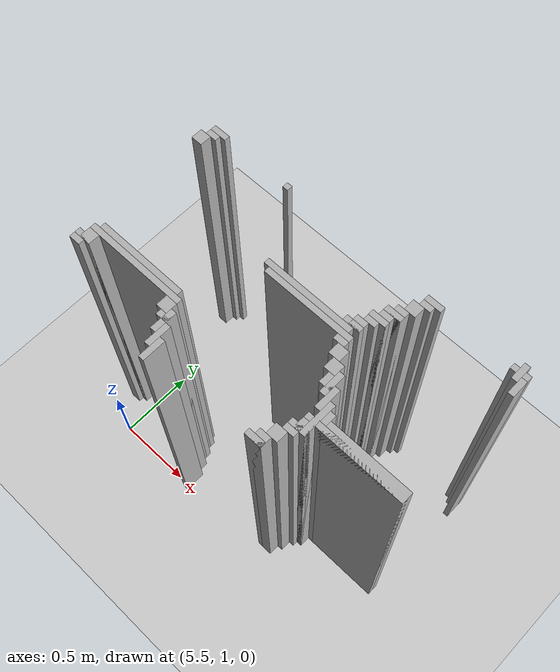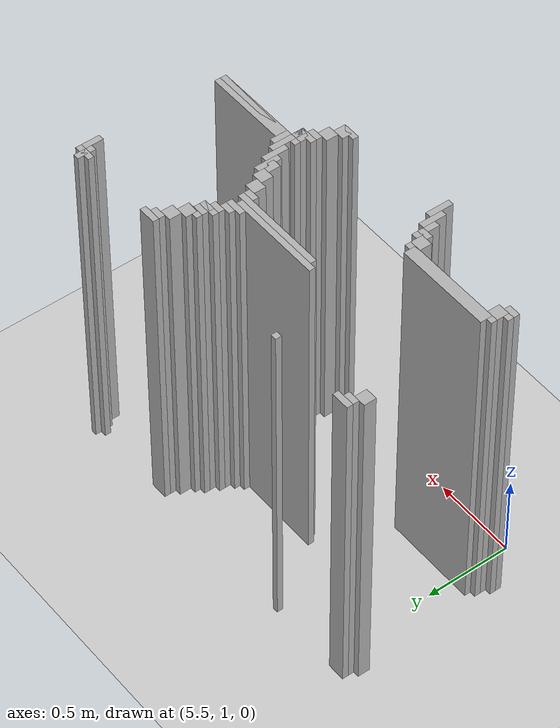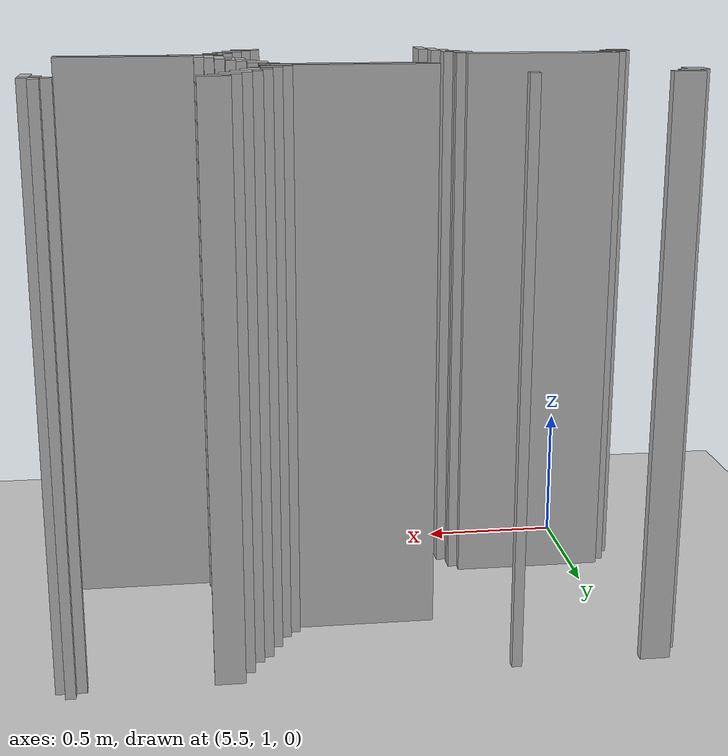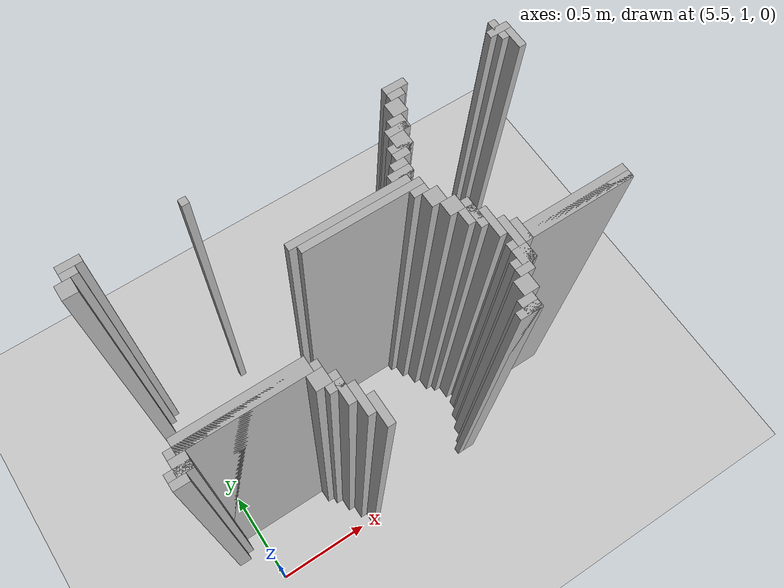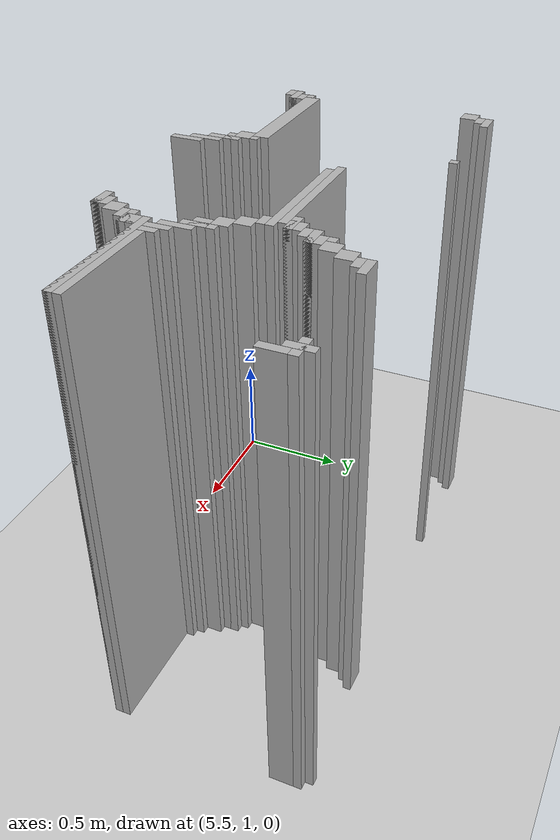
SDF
<sdf version="1.6">
 <world name="slam_world">
  <model name="ground_plane">
   <static>true</static>
   <link name="link">
    <collision name="collision">
     <geometry><plane><normal>0 0 1</normal><size>100 100</size></plane></geometry>
    </collision>
    <visual name="visual">
     <geometry><plane><normal>0 0 1</normal><size>100 100</size></plane></geometry>
     <material>
      <ambient>0.8 0.8 0.8 1</ambient>
      <diffuse>0.8 0.8 0.8 1</diffuse>
      <specular>0.8 0.8 0.8 1</specular>
     </material>
    </visual>
   </link>
  </model>
  <model name="wall_5050">
   <static>true</static>
   <pose>7.395591647331786 2.140371229698376 1.0 0 0 0</pose>
   <link name="link">
    <collision name="collision">
     <geometry><box><size>0.03480278422273782 0.10440835266821345 2.0</size></box></geometry>
    </collision>
    <visual name="visual">
     <geometry><box><size>0.03480278422273782 0.10440835266821345 2.0</size></box></geometry>
     <material><ambient>0.5 0.5 0.5 1</ambient><diffuse>0.7 0.7 0.7 1</diffuse></material>
    </visual>
   </link>
  </model>
  <model name="wall_5061">
   <static>true</static>
   <pose>5.41183294663573 2.140371229698376 1.0 0 0 0</pose>
   <link name="link">
    <collision name="collision">
     <geometry><box><size>0.10440835266821345 0.03480278422273782 2.0</size></box></geometry>
    </collision>
    <visual name="visual">
     <geometry><box><size>0.10440835266821345 0.03480278422273782 2.0</size></box></geometry>
     <material><ambient>0.5 0.5 0.5 1</ambient><diffuse>0.7 0.7 0.7 1</diffuse></material>
    </visual>
   </link>
  </model>
  <model name="wall_5062">
   <static>true</static>
   <pose>5.89907192575406 2.140371229698376 1.0 0 0 0</pose>
   <link name="link">
    <collision name="collision">
     <geometry><box><size>0.03480278422273782 0.03480278422273782 2.0</size></box></geometry>
    </collision>
    <visual name="visual">
     <geometry><box><size>0.03480278422273782 0.03480278422273782 2.0</size></box></geometry>
     <material><ambient>0.5 0.5 0.5 1</ambient><diffuse>0.7 0.7 0.7 1</diffuse></material>
    </visual>
   </link>
  </model>
  <model name="wall_5063">
   <static>true</static>
   <pose>6.8735498839907185 2.140371229698376 1.0 0 0 0</pose>
   <link name="link">
    <collision name="collision">
     <geometry><box><size>0.10440835266821345 0.03480278422273782 2.0</size></box></geometry>
    </collision>
    <visual name="visual">
     <geometry><box><size>0.10440835266821345 0.03480278422273782 2.0</size></box></geometry>
     <material><ambient>0.5 0.5 0.5 1</ambient><diffuse>0.7 0.7 0.7 1</diffuse></material>
    </visual>
   </link>
  </model>
  <model name="wall_5064">
   <static>true</static>
   <pose>7.395591647331786 2.140371229698376 1.0 0 0 0</pose>
   <link name="link">
    <collision name="collision">
     <geometry><box><size>0.10440835266821345 0.03480278422273782 2.0</size></box></geometry>
    </collision>
    <visual name="visual">
     <geometry><box><size>0.10440835266821345 0.03480278422273782 2.0</size></box></geometry>
     <material><ambient>0.5 0.5 0.5 1</ambient><diffuse>0.7 0.7 0.7 1</diffuse></material>
    </visual>
   </link>
  </model>
  <model name="wall_5078">
   <static>true</static>
   <pose>5.3944315545243615 2.105568445475638 1.0 0 0 0</pose>
   <link name="link">
    <collision name="collision">
     <geometry><box><size>0.06960556844547564 0.03480278422273782 2.0</size></box></geometry>
    </collision>
    <visual name="visual">
     <geometry><box><size>0.06960556844547564 0.03480278422273782 2.0</size></box></geometry>
     <material><ambient>0.5 0.5 0.5 1</ambient><diffuse>0.7 0.7 0.7 1</diffuse></material>
    </visual>
   </link>
  </model>
  <model name="wall_5079">
   <static>true</static>
   <pose>6.85614849187935 2.105568445475638 1.0 0 0 0</pose>
   <link name="link">
    <collision name="collision">
     <geometry><box><size>0.06960556844547564 0.03480278422273782 2.0</size></box></geometry>
    </collision>
    <visual name="visual">
     <geometry><box><size>0.06960556844547564 0.03480278422273782 2.0</size></box></geometry>
     <material><ambient>0.5 0.5 0.5 1</ambient><diffuse>0.7 0.7 0.7 1</diffuse></material>
    </visual>
   </link>
  </model>
  <model name="wall_5080">
   <static>true</static>
   <pose>7.430394431554524 2.0707656612529 1.0 0 0 0</pose>
   <link name="link">
    <collision name="collision">
     <geometry><box><size>0.03480278422273782 0.10440835266821345 2.0</size></box></geometry>
    </collision>
    <visual name="visual">
     <geometry><box><size>0.03480278422273782 0.10440835266821345 2.0</size></box></geometry>
     <material><ambient>0.5 0.5 0.5 1</ambient><diffuse>0.7 0.7 0.7 1</diffuse></material>
    </visual>
   </link>
  </model>
  <model name="wall_5092">
   <static>true</static>
   <pose>5.359628770301624 2.053364269141531 1.0 0 0 0</pose>
   <link name="link">
    <collision name="collision">
     <geometry><box><size>0.06960556844547564 0.06960556844547564 2.0</size></box></geometry>
    </collision>
    <visual name="visual">
     <geometry><box><size>0.06960556844547564 0.06960556844547564 2.0</size></box></geometry>
     <material><ambient>0.5 0.5 0.5 1</ambient><diffuse>0.7 0.7 0.7 1</diffuse></material>
    </visual>
   </link>
  </model>
  <model name="wall_5093">
   <static>true</static>
   <pose>6.821345707656612 2.053364269141531 1.0 0 0 0</pose>
   <link name="link">
    <collision name="collision">
     <geometry><box><size>0.06960556844547564 0.06960556844547564 2.0</size></box></geometry>
    </collision>
    <visual name="visual">
     <geometry><box><size>0.06960556844547564 0.06960556844547564 2.0</size></box></geometry>
     <material><ambient>0.5 0.5 0.5 1</ambient><diffuse>0.7 0.7 0.7 1</diffuse></material>
    </visual>
   </link>
  </model>
  <model name="wall_5107">
   <static>true</static>
   <pose>6.786542923433874 1.9837587006960555 1.0 0 0 0</pose>
   <link name="link">
    <collision name="collision">
     <geometry><box><size>0.06960556844547564 0.06960556844547564 2.0</size></box></geometry>
    </collision>
    <visual name="visual">
     <geometry><box><size>0.06960556844547564 0.06960556844547564 2.0</size></box></geometry>
     <material><ambient>0.5 0.5 0.5 1</ambient><diffuse>0.7 0.7 0.7 1</diffuse></material>
    </visual>
   </link>
  </model>
  <model name="wall_5121">
   <static>true</static>
   <pose>6.769141531322505 1.9663573085846866 1.0 0 0 0</pose>
   <link name="link">
    <collision name="collision">
     <geometry><box><size>0.10440835266821345 0.03480278422273782 2.0</size></box></geometry>
    </collision>
    <visual name="visual">
     <geometry><box><size>0.10440835266821345 0.03480278422273782 2.0</size></box></geometry>
     <material><ambient>0.5 0.5 0.5 1</ambient><diffuse>0.7 0.7 0.7 1</diffuse></material>
    </visual>
   </link>
  </model>
  <model name="wall_5132">
   <static>true</static>
   <pose>6.751740139211137 1.91415313225058 1.0 0 0 0</pose>
   <link name="link">
    <collision name="collision">
     <geometry><box><size>0.06960556844547564 0.06960556844547564 2.0</size></box></geometry>
    </collision>
    <visual name="visual">
     <geometry><box><size>0.06960556844547564 0.06960556844547564 2.0</size></box></geometry>
     <material><ambient>0.5 0.5 0.5 1</ambient><diffuse>0.7 0.7 0.7 1</diffuse></material>
    </visual>
   </link>
  </model>
  <model name="wall_5143">
   <static>true</static>
   <pose>6.734338747099768 1.896751740139211 1.0 0 0 0</pose>
   <link name="link">
    <collision name="collision">
     <geometry><box><size>0.10440835266821345 0.03480278422273782 2.0</size></box></geometry>
    </collision>
    <visual name="visual">
     <geometry><box><size>0.10440835266821345 0.03480278422273782 2.0</size></box></geometry>
     <material><ambient>0.5 0.5 0.5 1</ambient><diffuse>0.7 0.7 0.7 1</diffuse></material>
    </visual>
   </link>
  </model>
  <model name="wall_5154">
   <static>true</static>
   <pose>6.716937354988398 1.8619489559164732 1.0 0 0 0</pose>
   <link name="link">
    <collision name="collision">
     <geometry><box><size>0.06960556844547564 0.03480278422273782 2.0</size></box></geometry>
    </collision>
    <visual name="visual">
     <geometry><box><size>0.06960556844547564 0.03480278422273782 2.0</size></box></geometry>
     <material><ambient>0.5 0.5 0.5 1</ambient><diffuse>0.7 0.7 0.7 1</diffuse></material>
    </visual>
   </link>
  </model>
  <model name="wall_5162">
   <static>true</static>
   <pose>6.682134570765661 1.8097447795823665 1.0 0 0 0</pose>
   <link name="link">
    <collision name="collision">
     <geometry><box><size>0.06960556844547564 0.06960556844547564 2.0</size></box></geometry>
    </collision>
    <visual name="visual">
     <geometry><box><size>0.06960556844547564 0.06960556844547564 2.0</size></box></geometry>
     <material><ambient>0.5 0.5 0.5 1</ambient><diffuse>0.7 0.7 0.7 1</diffuse></material>
    </visual>
   </link>
  </model>
  <model name="wall_5176">
   <static>true</static>
   <pose>6.664733178654292 1.7923433874709975 1.0 0 0 0</pose>
   <link name="link">
    <collision name="collision">
     <geometry><box><size>0.10440835266821345 0.03480278422273782 2.0</size></box></geometry>
    </collision>
    <visual name="visual">
     <geometry><box><size>0.10440835266821345 0.03480278422273782 2.0</size></box></geometry>
     <material><ambient>0.5 0.5 0.5 1</ambient><diffuse>0.7 0.7 0.7 1</diffuse></material>
    </visual>
   </link>
  </model>
  <model name="wall_5188">
   <static>true</static>
   <pose>6.403712296983758 1.75754060324826 1.0 0 0 0</pose>
   <link name="link">
    <collision name="collision">
     <geometry><box><size>0.5568445475638051 0.03480278422273782 2.0</size></box></geometry>
    </collision>
    <visual name="visual">
     <geometry><box><size>0.5568445475638051 0.03480278422273782 2.0</size></box></geometry>
     <material><ambient>0.5 0.5 0.5 1</ambient><diffuse>0.7 0.7 0.7 1</diffuse></material>
    </visual>
   </link>
  </model>
  <model name="wall_5198">
   <static>true</static>
   <pose>6.438515081206496 1.722737819025522 1.0 0 0 0</pose>
   <link name="link">
    <collision name="collision">
     <geometry><box><size>0.5568445475638051 0.03480278422273782 2.0</size></box></geometry>
    </collision>
    <visual name="visual">
     <geometry><box><size>0.5568445475638051 0.03480278422273782 2.0</size></box></geometry>
     <material><ambient>0.5 0.5 0.5 1</ambient><diffuse>0.7 0.7 0.7 1</diffuse></material>
    </visual>
   </link>
  </model>
  <model name="wall_5213">
   <static>true</static>
   <pose>6.682134570765661 1.6879350348027842 1.0 0 0 0</pose>
   <link name="link">
    <collision name="collision">
     <geometry><box><size>0.06960556844547564 0.03480278422273782 2.0</size></box></geometry>
    </collision>
    <visual name="visual">
     <geometry><box><size>0.06960556844547564 0.03480278422273782 2.0</size></box></geometry>
     <material><ambient>0.5 0.5 0.5 1</ambient><diffuse>0.7 0.7 0.7 1</diffuse></material>
    </visual>
   </link>
  </model>
  <model name="wall_5228">
   <static>true</static>
   <pose>6.716937354988398 1.6357308584686774 1.0 0 0 0</pose>
   <link name="link">
    <collision name="collision">
     <geometry><box><size>0.06960556844547564 0.06960556844547564 2.0</size></box></geometry>
    </collision>
    <visual name="visual">
     <geometry><box><size>0.06960556844547564 0.06960556844547564 2.0</size></box></geometry>
     <material><ambient>0.5 0.5 0.5 1</ambient><diffuse>0.7 0.7 0.7 1</diffuse></material>
    </visual>
   </link>
  </model>
  <model name="wall_5243">
   <static>true</static>
   <pose>6.751740139211137 1.5661252900232019 1.0 0 0 0</pose>
   <link name="link">
    <collision name="collision">
     <geometry><box><size>0.06960556844547564 0.06960556844547564 2.0</size></box></geometry>
    </collision>
    <visual name="visual">
     <geometry><box><size>0.06960556844547564 0.06960556844547564 2.0</size></box></geometry>
     <material><ambient>0.5 0.5 0.5 1</ambient><diffuse>0.7 0.7 0.7 1</diffuse></material>
    </visual>
   </link>
  </model>
  <model name="wall_5258">
   <static>true</static>
   <pose>6.803944315545244 1.4965197215777262 1.0 0 0 0</pose>
   <link name="link">
    <collision name="collision">
     <geometry><box><size>0.03480278422273782 0.13921113689095127 2.0</size></box></geometry>
    </collision>
    <visual name="visual">
     <geometry><box><size>0.03480278422273782 0.13921113689095127 2.0</size></box></geometry>
     <material><ambient>0.5 0.5 0.5 1</ambient><diffuse>0.7 0.7 0.7 1</diffuse></material>
    </visual>
   </link>
  </model>
  <model name="wall_5273">
   <static>true</static>
   <pose>6.786542923433874 1.4965197215777262 1.0 0 0 0</pose>
   <link name="link">
    <collision name="collision">
     <geometry><box><size>0.06960556844547564 0.06960556844547564 2.0</size></box></geometry>
    </collision>
    <visual name="visual">
     <geometry><box><size>0.06960556844547564 0.06960556844547564 2.0</size></box></geometry>
     <material><ambient>0.5 0.5 0.5 1</ambient><diffuse>0.7 0.7 0.7 1</diffuse></material>
    </visual>
   </link>
  </model>
  <model name="wall_5284">
   <static>true</static>
   <pose>6.838747099767981 1.4269141531322505 1.0 0 0 0</pose>
   <link name="link">
    <collision name="collision">
     <geometry><box><size>0.03480278422273782 0.13921113689095127 2.0</size></box></geometry>
    </collision>
    <visual name="visual">
     <geometry><box><size>0.03480278422273782 0.13921113689095127 2.0</size></box></geometry>
     <material><ambient>0.5 0.5 0.5 1</ambient><diffuse>0.7 0.7 0.7 1</diffuse></material>
    </visual>
   </link>
  </model>
  <model name="wall_5306">
   <static>true</static>
   <pose>6.8735498839907185 1.322505800464037 1.0 0 0 0</pose>
   <link name="link">
    <collision name="collision">
     <geometry><box><size>0.03480278422273782 0.2088167053364269 2.0</size></box></geometry>
    </collision>
    <visual name="visual">
     <geometry><box><size>0.03480278422273782 0.2088167053364269 2.0</size></box></geometry>
     <material><ambient>0.5 0.5 0.5 1</ambient><diffuse>0.7 0.7 0.7 1</diffuse></material>
    </visual>
   </link>
  </model>
  <model name="wall_5316">
   <static>true</static>
   <pose>6.908352668213457 1.339907192575406 1.0 0 0 0</pose>
   <link name="link">
    <collision name="collision">
     <geometry><box><size>0.03480278422273782 0.10440835266821345 2.0</size></box></geometry>
    </collision>
    <visual name="visual">
     <geometry><box><size>0.03480278422273782 0.10440835266821345 2.0</size></box></geometry>
     <material><ambient>0.5 0.5 0.5 1</ambient><diffuse>0.7 0.7 0.7 1</diffuse></material>
    </visual>
   </link>
  </model>
  <model name="wall_5330">
   <static>true</static>
   <pose>5.672853828306264 1.322505800464037 1.0 0 0 0</pose>
   <link name="link">
    <collision name="collision">
     <geometry><box><size>0.5568445475638051 0.06960556844547564 2.0</size></box></geometry>
    </collision>
    <visual name="visual">
     <geometry><box><size>0.5568445475638051 0.06960556844547564 2.0</size></box></geometry>
     <material><ambient>0.5 0.5 0.5 1</ambient><diffuse>0.7 0.7 0.7 1</diffuse></material>
    </visual>
   </link>
  </model>
  <model name="wall_5331">
   <static>true</static>
   <pose>7.16937354988399 1.322505800464037 1.0 0 0 0</pose>
   <link name="link">
    <collision name="collision">
     <geometry><box><size>0.4872389791183295 0.06960556844547564 2.0</size></box></geometry>
    </collision>
    <visual name="visual">
     <geometry><box><size>0.4872389791183295 0.06960556844547564 2.0</size></box></geometry>
     <material><ambient>0.5 0.5 0.5 1</ambient><diffuse>0.7 0.7 0.7 1</diffuse></material>
    </visual>
   </link>
  </model>
  <model name="wall_5338">
   <static>true</static>
   <pose>5.672853828306264 1.3051044083526682 1.0 0 0 0</pose>
   <link name="link">
    <collision name="collision">
     <geometry><box><size>0.6264501160092807 0.03480278422273782 2.0</size></box></geometry>
    </collision>
    <visual name="visual">
     <geometry><box><size>0.6264501160092807 0.03480278422273782 2.0</size></box></geometry>
     <material><ambient>0.5 0.5 0.5 1</ambient><diffuse>0.7 0.7 0.7 1</diffuse></material>
    </visual>
   </link>
  </model>
  <model name="wall_5339">
   <static>true</static>
   <pose>7.117169373549884 1.3051044083526682 1.0 0 0 0</pose>
   <link name="link">
    <collision name="collision">
     <geometry><box><size>0.5916473317865429 0.03480278422273782 2.0</size></box></geometry>
    </collision>
    <visual name="visual">
     <geometry><box><size>0.5916473317865429 0.03480278422273782 2.0</size></box></geometry>
     <material><ambient>0.5 0.5 0.5 1</ambient><diffuse>0.7 0.7 0.7 1</diffuse></material>
    </visual>
   </link>
  </model>
  <model name="wall_5346">
   <static>true</static>
   <pose>5.3944315545243615 1.2529002320185614 1.0 0 0 0</pose>
   <link name="link">
    <collision name="collision">
     <geometry><box><size>0.06960556844547564 0.06960556844547564 2.0</size></box></geometry>
    </collision>
    <visual name="visual">
     <geometry><box><size>0.06960556844547564 0.06960556844547564 2.0</size></box></geometry>
     <material><ambient>0.5 0.5 0.5 1</ambient><diffuse>0.7 0.7 0.7 1</diffuse></material>
    </visual>
   </link>
  </model>
  <model name="wall_5347">
   <static>true</static>
   <pose>5.951276102088166 1.2529002320185614 1.0 0 0 0</pose>
   <link name="link">
    <collision name="collision">
     <geometry><box><size>0.06960556844547564 0.06960556844547564 2.0</size></box></geometry>
    </collision>
    <visual name="visual">
     <geometry><box><size>0.06960556844547564 0.06960556844547564 2.0</size></box></geometry>
     <material><ambient>0.5 0.5 0.5 1</ambient><diffuse>0.7 0.7 0.7 1</diffuse></material>
    </visual>
   </link>
  </model>
  <model name="wall_5348">
   <static>true</static>
   <pose>6.85614849187935 1.2529002320185614 1.0 0 0 0</pose>
   <link name="link">
    <collision name="collision">
     <geometry><box><size>0.06960556844547564 0.06960556844547564 2.0</size></box></geometry>
    </collision>
    <visual name="visual">
     <geometry><box><size>0.06960556844547564 0.06960556844547564 2.0</size></box></geometry>
     <material><ambient>0.5 0.5 0.5 1</ambient><diffuse>0.7 0.7 0.7 1</diffuse></material>
    </visual>
   </link>
  </model>
  <model name="wall_5357">
   <static>true</static>
   <pose>5.377030162412993 1.2354988399071924 1.0 0 0 0</pose>
   <link name="link">
    <collision name="collision">
     <geometry><box><size>0.10440835266821345 0.03480278422273782 2.0</size></box></geometry>
    </collision>
    <visual name="visual">
     <geometry><box><size>0.10440835266821345 0.03480278422273782 2.0</size></box></geometry>
     <material><ambient>0.5 0.5 0.5 1</ambient><diffuse>0.7 0.7 0.7 1</diffuse></material>
    </visual>
   </link>
  </model>
  <model name="wall_5358">
   <static>true</static>
   <pose>6.003480278422273 1.1832946635730859 1.0 0 0 0</pose>
   <link name="link">
    <collision name="collision">
     <geometry><box><size>0.03480278422273782 0.13921113689095127 2.0</size></box></geometry>
    </collision>
    <visual name="visual">
     <geometry><box><size>0.03480278422273782 0.13921113689095127 2.0</size></box></geometry>
     <material><ambient>0.5 0.5 0.5 1</ambient><diffuse>0.7 0.7 0.7 1</diffuse></material>
    </visual>
   </link>
  </model>
  <model name="wall_5359">
   <static>true</static>
   <pose>6.838747099767981 1.2354988399071924 1.0 0 0 0</pose>
   <link name="link">
    <collision name="collision">
     <geometry><box><size>0.10440835266821345 0.03480278422273782 2.0</size></box></geometry>
    </collision>
    <visual name="visual">
     <geometry><box><size>0.10440835266821345 0.03480278422273782 2.0</size></box></geometry>
     <material><ambient>0.5 0.5 0.5 1</ambient><diffuse>0.7 0.7 0.7 1</diffuse></material>
    </visual>
   </link>
  </model>
  <model name="wall_5367">
   <static>true</static>
   <pose>5.359628770301624 1.2006960556844548 1.0 0 0 0</pose>
   <link name="link">
    <collision name="collision">
     <geometry><box><size>0.06960556844547564 0.03480278422273782 2.0</size></box></geometry>
    </collision>
    <visual name="visual">
     <geometry><box><size>0.06960556844547564 0.03480278422273782 2.0</size></box></geometry>
     <material><ambient>0.5 0.5 0.5 1</ambient><diffuse>0.7 0.7 0.7 1</diffuse></material>
    </visual>
   </link>
  </model>
  <model name="wall_5368">
   <static>true</static>
   <pose>5.986078886310905 1.2006960556844548 1.0 0 0 0</pose>
   <link name="link">
    <collision name="collision">
     <geometry><box><size>0.06960556844547564 0.03480278422273782 2.0</size></box></geometry>
    </collision>
    <visual name="visual">
     <geometry><box><size>0.06960556844547564 0.03480278422273782 2.0</size></box></geometry>
     <material><ambient>0.5 0.5 0.5 1</ambient><diffuse>0.7 0.7 0.7 1</diffuse></material>
    </visual>
   </link>
  </model>
  <model name="wall_5369">
   <static>true</static>
   <pose>6.821345707656612 1.2006960556844548 1.0 0 0 0</pose>
   <link name="link">
    <collision name="collision">
     <geometry><box><size>0.06960556844547564 0.03480278422273782 2.0</size></box></geometry>
    </collision>
    <visual name="visual">
     <geometry><box><size>0.06960556844547564 0.03480278422273782 2.0</size></box></geometry>
     <material><ambient>0.5 0.5 0.5 1</ambient><diffuse>0.7 0.7 0.7 1</diffuse></material>
    </visual>
   </link>
  </model>
  <model name="wall_5377">
   <static>true</static>
   <pose>6.038283062645012 1.1136890951276102 1.0 0 0 0</pose>
   <link name="link">
    <collision name="collision">
     <geometry><box><size>0.03480278422273782 0.13921113689095127 2.0</size></box></geometry>
    </collision>
    <visual name="visual">
     <geometry><box><size>0.03480278422273782 0.13921113689095127 2.0</size></box></geometry>
     <material><ambient>0.5 0.5 0.5 1</ambient><diffuse>0.7 0.7 0.7 1</diffuse></material>
    </visual>
   </link>
  </model>
  <model name="wall_5378">
   <static>true</static>
   <pose>6.786542923433874 1.148491879350348 1.0 0 0 0</pose>
   <link name="link">
    <collision name="collision">
     <geometry><box><size>0.06960556844547564 0.06960556844547564 2.0</size></box></geometry>
    </collision>
    <visual name="visual">
     <geometry><box><size>0.06960556844547564 0.06960556844547564 2.0</size></box></geometry>
     <material><ambient>0.5 0.5 0.5 1</ambient><diffuse>0.7 0.7 0.7 1</diffuse></material>
    </visual>
   </link>
  </model>
  <model name="wall_5388">
   <static>true</static>
   <pose>6.073085846867749 1.0440835266821344 1.0 0 0 0</pose>
   <link name="link">
    <collision name="collision">
     <geometry><box><size>0.03480278422273782 0.13921113689095127 2.0</size></box></geometry>
    </collision>
    <visual name="visual">
     <geometry><box><size>0.03480278422273782 0.13921113689095127 2.0</size></box></geometry>
     <material><ambient>0.5 0.5 0.5 1</ambient><diffuse>0.7 0.7 0.7 1</diffuse></material>
    </visual>
   </link>
  </model>
  <model name="wall_5389">
   <static>true</static>
   <pose>6.751740139211137 1.0788863109048723 1.0 0 0 0</pose>
   <link name="link">
    <collision name="collision">
     <geometry><box><size>0.06960556844547564 0.06960556844547564 2.0</size></box></geometry>
    </collision>
    <visual name="visual">
     <geometry><box><size>0.06960556844547564 0.06960556844547564 2.0</size></box></geometry>
     <material><ambient>0.5 0.5 0.5 1</ambient><diffuse>0.7 0.7 0.7 1</diffuse></material>
    </visual>
   </link>
  </model>
  <model name="wall_5400">
   <static>true</static>
   <pose>6.734338747099768 1.0614849187935034 1.0 0 0 0</pose>
   <link name="link">
    <collision name="collision">
     <geometry><box><size>0.10440835266821345 0.03480278422273782 2.0</size></box></geometry>
    </collision>
    <visual name="visual">
     <geometry><box><size>0.10440835266821345 0.03480278422273782 2.0</size></box></geometry>
     <material><ambient>0.5 0.5 0.5 1</ambient><diffuse>0.7 0.7 0.7 1</diffuse></material>
    </visual>
   </link>
  </model>
 </world>
</sdf>
